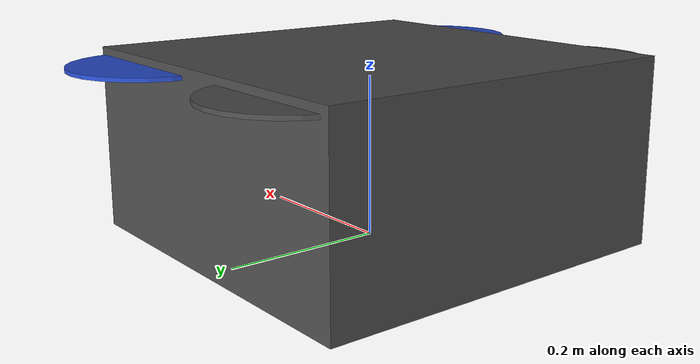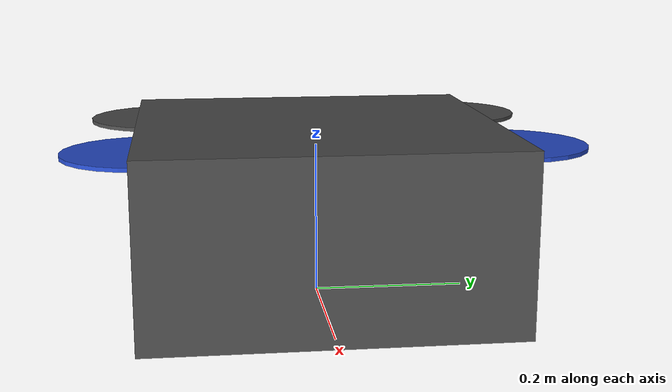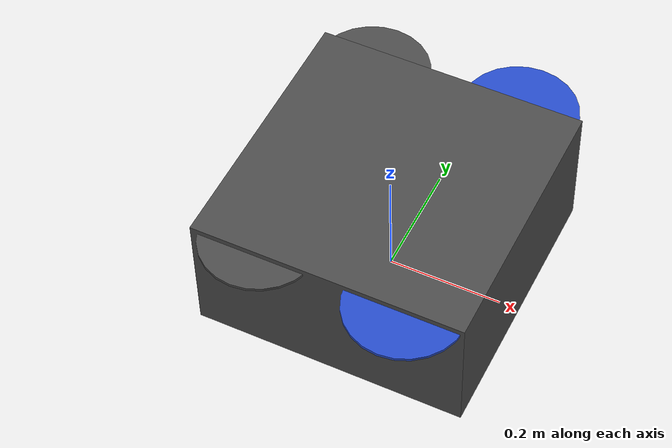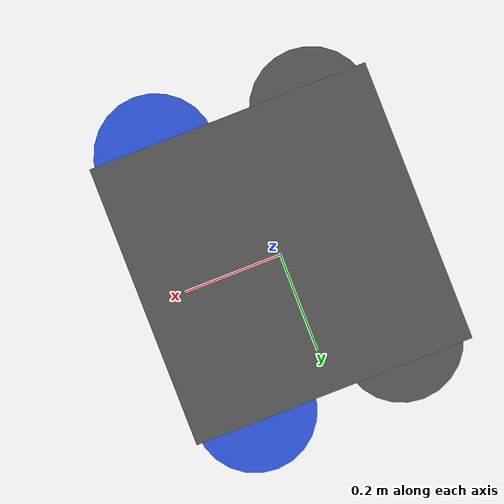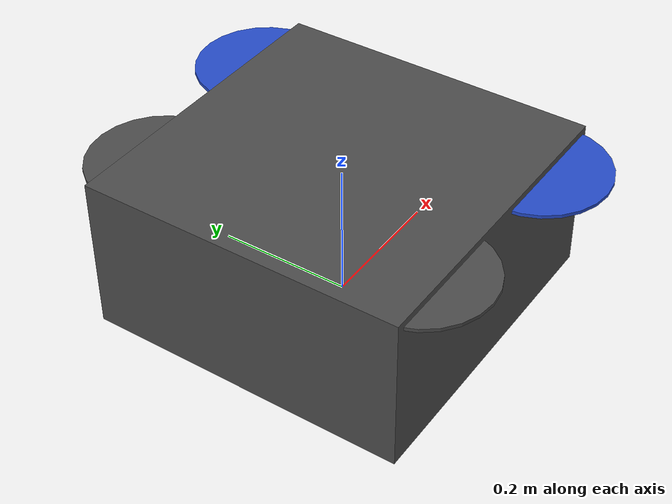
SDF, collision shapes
<?xml version='1.0'?>
<sdf version='1.6'>
  <model name='iris_with_kinect'>
    <pose>0 0 0 0 0 0</pose>

      <include>
        <uri>model://iris_with_standoffs_demo</uri>
        <pose>0 0 0 0 0 0</pose>
      </include>

      <include>
        <uri>model://kinect_depth</uri>
        <pose>0.03 0 0.13 0 0.6 0</pose>
      </include>

      <joint name="cam_mount" type="fixed">
	<parent>iris_demo::iris::base_link</parent>
	<child>kinect::cam_link</child>
	<axis>
	  <limit>
	    <lower>0</lower>
 	    <upper>0</upper>
	  </limit>
	  <xyz>0 0 1</xyz>
	  <use_parent_model_frame>true</use_parent_model_frame>
	</axis>
      </joint>

      <!-- For Another Lidar Payload -->
    </model>
  </sdf>

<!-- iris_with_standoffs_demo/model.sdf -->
<sdf version="1.6">
  <model name="iris_demo">
    <include>
      <uri>model://iris_with_standoffs</uri>
    </include>

    <!-- plugins -->
    <plugin name="rotor_0_blade_1" filename="libLiftDragPlugin.so">
      <a0>0.1</a0>
      <alpha_stall>1.4</alpha_stall>
      <cla>0.2500</cla>
      <cda>0.10</cda>
      <cma>0.00</cma>
      <cla_stall>-0.025</cla_stall>
      <cda_stall>0.0</cda_stall>
      <cma_stall>0.0</cma_stall>
      <area>0.2</area>
      <air_density>1.2041</air_density>
      <cp>0.084 0 0</cp>
      <forward>0 1 0</forward>
      <upward>0 0 1</upward>
      <link_name>iris::rotor_0</link_name>
    </plugin>
    <plugin name="rotor_0_blade_2" filename="libLiftDragPlugin.so">
      <a0>0.1</a0>
      <alpha_stall>1.4</alpha_stall>
      <cla>0.2500</cla>
      <cda>0.10</cda>
      <cma>0.00</cma>
      <cla_stall>-0.025</cla_stall>
      <cda_stall>0.0</cda_stall>
      <cma_stall>0.0</cma_stall>
      <area>0.2</area>
      <air_density>1.2041</air_density>
      <cp>-0.084 0 0</cp>
      <forward>0 -1 0</forward>
      <upward>0 0 1</upward>
      <link_name>iris::rotor_0</link_name>
    </plugin>

    <plugin name="rotor_1_blade_1" filename="libLiftDragPlugin.so">
      <a0>0.1</a0>
      <alpha_stall>1.4</alpha_stall>
      <cla>0.2500</cla>
      <cda>0.10</cda>
      <cma>0.00</cma>
      <cla_stall>-0.025</cla_stall>
      <cda_stall>0.0</cda_stall>
      <cma_stall>0.0</cma_stall>
      <area>0.2</area>
      <air_density>1.2041</air_density>
      <cp>0.084 0 0</cp>
      <forward>0 1 0</forward>
      <upward>0 0 1</upward>
      <link_name>iris::rotor_1</link_name>
    </plugin>
    <plugin name="rotor_1_blade_2" filename="libLiftDragPlugin.so">
      <a0>0.1</a0>
      <alpha_stall>1.4</alpha_stall>
      <cla>0.2500</cla>
      <cda>0.10</cda>
      <cma>0.00</cma>
      <cla_stall>-0.025</cla_stall>
      <cda_stall>0.0</cda_stall>
      <cma_stall>0.0</cma_stall>
      <area>0.2</area>
      <air_density>1.2041</air_density>
      <cp>-0.084 0 0</cp>
      <forward>0 -1 0</forward>
      <upward>0 0 1</upward>
      <link_name>iris::rotor_1</link_name>
    </plugin>

    <plugin name="rotor_2_blade_1" filename="libLiftDragPlugin.so">
      <a0>0.1</a0>
      <alpha_stall>1.4</alpha_stall>
      <cla>0.2500</cla>
      <cda>0.10</cda>
      <cma>0.00</cma>
      <cla_stall>-0.025</cla_stall>
      <cda_stall>0.0</cda_stall>
      <cma_stall>0.0</cma_stall>
      <area>0.2</area>
      <air_density>1.2041</air_density>
      <cp>0.084 0 0</cp>
      <forward>0 -1 0</forward>
      <upward>0 0 1</upward>
      <link_name>iris::rotor_2</link_name>
    </plugin>
    <plugin name="rotor_2_blade_2" filename="libLiftDragPlugin.so">
      <a0>0.1</a0>
      <alpha_stall>1.4</alpha_stall>
      <cla>0.2500</cla>
      <cda>0.10</cda>
      <cma>0.00</cma>
      <cla_stall>-0.025</cla_stall>
      <cda_stall>0.0</cda_stall>
      <cma_stall>0.0</cma_stall>
      <area>0.2</area>
      <air_density>1.2041</air_density>
      <cp>-0.084 0 0</cp>
      <forward>0 1 0</forward>
      <upward>0 0 1</upward>
      <link_name>iris::rotor_2</link_name>
    </plugin>

    <plugin name="rotor_3_blade_1" filename="libLiftDragPlugin.so">
      <a0>0.1</a0>
      <alpha_stall>1.4</alpha_stall>
      <cla>0.2500</cla>
      <cda>0.10</cda>
      <cma>0.00</cma>
      <cla_stall>-0.025</cla_stall>
      <cda_stall>0.0</cda_stall>
      <cma_stall>0.0</cma_stall>
      <area>0.2</area>
      <air_density>1.2041</air_density>
      <cp>0.084 0 0</cp>
      <forward>0 -1 0</forward>
      <upward>0 0 1</upward>
      <link_name>iris::rotor_3</link_name>
    </plugin>
    <plugin name="rotor_3_blade_2" filename="libLiftDragPlugin.so">
      <a0>0.1</a0>
      <alpha_stall>1.4</alpha_stall>
      <cla>0.2500</cla>
      <cda>0.10</cda>
      <cma>0.00</cma>
      <cla_stall>-0.025</cla_stall>
      <cda_stall>0.0</cda_stall>
      <cma_stall>0.0</cma_stall>
      <area>0.2</area>
      <air_density>1.2041</air_density>
      <cp>-0.084 0 0</cp>
      <forward>0 1 0</forward>
      <upward>0 0 1</upward>
      <link_name>iris::rotor_3</link_name>
    </plugin>
    <plugin name="arducopter_plugin" filename="libArduCopterPlugin.so">
      <imuName>iris_demo::iris::iris/imu_link::imu_sensor</imuName>
      <connectionTimeoutMaxCount>5</connectionTimeoutMaxCount>
      <rotor id="0">
        <vel_p_gain>0.01</vel_p_gain>
        <vel_i_gain>0</vel_i_gain>
        <vel_d_gain>0</vel_d_gain>
        <vel_i_max>0</vel_i_max>
        <vel_i_min>0</vel_i_min>
        <vel_cmd_max>2.0</vel_cmd_max>
        <vel_cmd_min>-2.0</vel_cmd_min>
        <jointName>iris::rotor_0_joint</jointName>
        <turningDirection>ccw</turningDirection>
        <rotorVelocitySlowdownSim>1</rotorVelocitySlowdownSim>
      </rotor>
      <rotor id="1">
        <vel_p_gain>0.01</vel_p_gain>
        <vel_i_gain>0</vel_i_gain>
        <vel_d_gain>0</vel_d_gain>
        <vel_i_max>0</vel_i_max>
        <vel_i_min>0</vel_i_min>
        <vel_cmd_max>2.0</vel_cmd_max>
        <vel_cmd_min>-2.0</vel_cmd_min>
        <jointName>iris::rotor_1_joint</jointName>
        <turningDirection>ccw</turningDirection>
        <rotorVelocitySlowdownSim>1</rotorVelocitySlowdownSim>
      </rotor>
      <rotor id="2">
        <vel_p_gain>0.01</vel_p_gain>
        <vel_i_gain>0</vel_i_gain>
        <vel_d_gain>0</vel_d_gain>
        <vel_i_max>0</vel_i_max>
        <vel_i_min>0</vel_i_min>
        <vel_cmd_max>2.0</vel_cmd_max>
        <vel_cmd_min>-2.0</vel_cmd_min>
        <jointName>iris::rotor_2_joint</jointName>
        <turningDirection>cw</turningDirection>
        <rotorVelocitySlowdownSim>1</rotorVelocitySlowdownSim>
      </rotor>
      <rotor id="3">
        <vel_p_gain>0.01</vel_p_gain>
        <vel_i_gain>0</vel_i_gain>
        <vel_d_gain>0</vel_d_gain>
        <vel_i_max>0</vel_i_max>
        <vel_i_min>0</vel_i_min>
        <vel_cmd_max>2.0</vel_cmd_max>
        <vel_cmd_min>-2.0</vel_cmd_min>
        <jointName>iris::rotor_3_joint</jointName>
        <turningDirection>cw</turningDirection>
        <rotorVelocitySlowdownSim>1</rotorVelocitySlowdownSim>
      </rotor>
    </plugin>

  </model>
</sdf>

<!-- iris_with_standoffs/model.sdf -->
<sdf version='1.6'>
  <model name='iris'>
    <pose>0 0 0.194923 0 0 0</pose>
    <link name='base_link'>
      <velocity_decay>
        <linear>0.0</linear>
        <angular>0.0</angular>
      </velocity_decay>
      <inertial>
        <pose>0 0 0 0 0 0</pose>
        <mass>1.5</mass>
        <inertia>
          <ixx>0.008</ixx>
          <ixy>0</ixy>
          <ixz>0</ixz>
          <iyy>0.015</iyy>
          <iyz>0</iyz>
          <izz>0.017</izz>
        </inertia>
      </inertial>
      <collision name='base_link_collision'>
        <pose>0 0 -0.08 0 0 0</pose>
        <geometry>
          <box>
            <size>0.47 0.47 0.23</size>
          </box>
        </geometry>
        <surface>
          <contact>
            <ode>
              <max_vel>100.0</max_vel>
              <min_depth>0.001</min_depth>
            </ode>
          </contact>
          <friction>
            <ode>
              <mu>1.0</mu>
              <mu2>1.0</mu2>
            </ode>
          </friction>
        </surface>
      </collision>
      <visual name='base_link_visual'>
        <geometry>
          <mesh>
            <uri>model://iris_with_standoffs/meshes/iris.dae</uri>
          </mesh>
        </geometry>
        <material>
          <script>
            <name>Gazebo/DarkGrey</name>
          </script>
        </material>
      </visual>

      <visual name='front_left_leg_visual'>
        <pose>0.123 0.22 -0.11 0 0 0</pose>
        <geometry>
          <cylinder>
            <radius>0.005</radius>
            <length>0.17</length>
          </cylinder>
        </geometry>
        <material>
          <script>
            <name>Gazebo/FlatBlack</name>
            <uri>file://media/materials/scripts/gazebo.material</uri>
          </script>
        </material>
      </visual>
      <visual name='front_right_leg_visual'>
        <pose>0.123 -0.22 -0.11 0 0 0</pose>
        <geometry>
          <cylinder>
            <radius>0.005</radius>
            <length>0.17</length>
          </cylinder>
        </geometry>
        <material>
          <script>
            <name>Gazebo/FlatBlack</name>
            <uri>file://media/materials/scripts/gazebo.material</uri>
          </script>
        </material>
      </visual>
      <visual name='rear_left_leg_visual'>
        <pose>-0.140 0.21 -0.11 0 0 0</pose>
        <geometry>
          <cylinder>
            <radius>0.005</radius>
            <length>0.17</length>
          </cylinder>
        </geometry>
        <material>
          <script>
            <name>Gazebo/FlatBlack</name>
            <uri>file://media/materials/scripts/gazebo.material</uri>
          </script>
        </material>
      </visual>
      <visual name='rear_right_leg_visual'>
        <pose>-0.140 -0.21 -0.11 0 0 0</pose>
        <geometry>
          <cylinder>
            <radius>0.005</radius>
            <length>0.17</length>
          </cylinder>
        </geometry>
        <material>
          <script>
            <name>Gazebo/FlatBlack</name>
            <uri>file://media/materials/scripts/gazebo.material</uri>
          </script>
        </material>
      </visual>
    </link>
    <link name='iris/ground_truth/odometry_sensorgt_link'>
      <pose>0 0 0 0 -0 0</pose>
      <inertial>
        <pose>0 0 0 0 -0 0</pose>
        <mass>0.15</mass>
        <inertia>
          <ixx>0.0001</ixx>
          <ixy>0</ixy>
          <ixz>0</ixz>
          <iyy>0.0002</iyy>
          <iyz>0</iyz>
          <izz>0.0002</izz>
        </inertia>
      </inertial>
    </link>
    <joint name='iris/ground_truth/odometry_sensorgt_joint' type='revolute'>
      <child>iris/ground_truth/odometry_sensorgt_link</child>
      <parent>base_link</parent>
      <axis>
        <xyz>0 0 1</xyz>
        <limit>
          <lower>0</lower>
          <upper>0</upper>
          <effort>0</effort>
          <velocity>0</velocity>
        </limit>
        <dynamics>
          <damping>1.0</damping>
        </dynamics>
        <use_parent_model_frame>1</use_parent_model_frame>
      </axis>
      <physics>
        <ode>
          <implicit_spring_damper>1</implicit_spring_damper>
        </ode>
      </physics>
    </joint>
    <link name='iris/imu_link'>
      <inertial>
        <pose>0 0 0 0 0 0</pose>
        <mass>0.15</mass>
        <inertia>
          <ixx>0.00001</ixx>
          <ixy>0</ixy>
          <ixz>0</ixz>
          <iyy>0.00002</iyy>
          <iyz>0</iyz>
          <izz>0.00002</izz>
        </inertia>
      </inertial>
      <sensor name="imu_sensor" type="imu">
        <pose>0 0 0 3.141593 0 0</pose>
        <always_on>1</always_on>
        <update_rate>1000.0</update_rate>
      </sensor>
    </link>
    <joint name='iris/imu_joint' type='revolute'>
      <child>iris/imu_link</child>
      <parent>base_link</parent>
      <axis>
        <xyz>0 0 1</xyz>
        <limit>
          <lower>0</lower>
          <upper>0</upper>
          <effort>0</effort>
          <velocity>0</velocity>
        </limit>
        <dynamics>
          <damping>1.0</damping>
        </dynamics>
        <use_parent_model_frame>1</use_parent_model_frame>
      </axis>
      <physics>
        <ode>
          <implicit_spring_damper>1</implicit_spring_damper>
        </ode>
      </physics>
    </joint>
    <link name='rotor_0'>
      <pose>0.13 -0.22 0.023 0 -0 0</pose>
      <inertial>
        <pose>0 0 0 0 -0 0</pose>
        <mass>0.025</mass>
        <inertia>
          <ixx>9.75e-06</ixx>
          <ixy>0</ixy>
          <ixz>0</ixz>
          <iyy>0.000166704</iyy>
          <iyz>0</iyz>
          <izz>0.000166704</izz>
        </inertia>
      </inertial>
      <collision name='rotor_0_collision'>
        <pose>0 0 0 0 -0 0</pose>
        <geometry>
          <cylinder>
            <length>0.005</length>
            <radius>0.1</radius>
          </cylinder>
        </geometry>
        <surface>
          <contact>
            <ode/>
          </contact>
          <friction>
            <ode/>
          </friction>
        </surface>
      </collision>
      <visual name='rotor_0_visual'>
        <pose>0 0 0 0 -0 0</pose>
        <geometry>
          <mesh>
            <scale>1 1 1</scale>
            <uri>model://iris_with_standoffs/meshes/iris_prop_ccw.dae</uri>
          </mesh>
        </geometry>
        <material>
          <script>
            <name>Gazebo/Blue</name>
            <uri>__default__</uri>
          </script>
        </material>
      </visual>
      <gravity>1</gravity>
      <velocity_decay/>
      <self_collide>0</self_collide>
    </link>
    <joint name='rotor_0_joint' type='revolute'>
      <child>rotor_0</child>
      <parent>base_link</parent>
      <axis>
        <xyz>0 0 1</xyz>
        <limit>
          <lower>-1e+16</lower>
          <upper>1e+16</upper>
        </limit>
        <dynamics>
          <damping>0.004</damping>
        </dynamics>
        <use_parent_model_frame>1</use_parent_model_frame>
      </axis>
      <physics>
        <ode>
          <implicit_spring_damper>1</implicit_spring_damper>
        </ode>
      </physics>
    </joint>
    <link name='rotor_1'>
      <pose>-0.13 0.2 0.023 0 -0 0</pose>
      <inertial>
        <pose>0 0 0 0 -0 0</pose>
        <mass>0.025</mass>
        <inertia>
          <ixx>9.75e-06</ixx>
          <ixy>0</ixy>
          <ixz>0</ixz>
          <iyy>0.000166704</iyy>
          <iyz>0</iyz>
          <izz>0.000166704</izz>
        </inertia>
      </inertial>
      <collision name='rotor_1_collision'>
        <pose>0 0 0 0 -0 0</pose>
        <geometry>
          <cylinder>
            <length>0.005</length>
            <radius>0.1</radius>
          </cylinder>
        </geometry>
        <surface>
          <contact>
            <ode/>
          </contact>
          <friction>
            <ode/>
          </friction>
        </surface>
      </collision>
      <visual name='rotor_1_visual'>
        <pose>0 0 0 0 -0 0</pose>
        <geometry>
          <mesh>
            <scale>1 1 1</scale>
            <uri>model://iris_with_standoffs/meshes/iris_prop_ccw.dae</uri>
          </mesh>
        </geometry>
        <material>
          <script>
            <name>Gazebo/DarkGrey</name>
            <uri>__default__</uri>
          </script>
        </material>
      </visual>
      <gravity>1</gravity>
      <velocity_decay/>
      <self_collide>0</self_collide>
    </link>
    <joint name='rotor_1_joint' type='revolute'>
      <child>rotor_1</child>
      <parent>base_link</parent>
      <axis>
        <xyz>0 0 1</xyz>
        <limit>
          <lower>-1e+16</lower>
          <upper>1e+16</upper>
        </limit>
        <dynamics>
          <damping>0.004</damping>
        </dynamics>
        <use_parent_model_frame>1</use_parent_model_frame>
      </axis>
      <physics>
        <ode>
          <implicit_spring_damper>1</implicit_spring_damper>
        </ode>
      </physics>
    </joint>
    <link name='rotor_2'>
      <pose>0.13 0.22 0.023 0 -0 0</pose>
      <inertial>
        <pose>0 0 0 0 -0 0</pose>
        <mass>0.025</mass>
        <inertia>
          <ixx>9.75e-06</ixx>
          <ixy>0</ixy>
          <ixz>0</ixz>
          <iyy>0.000166704</iyy>
          <iyz>0</iyz>
          <izz>0.000166704</izz>
        </inertia>
      </inertial>
      <collision name='rotor_2_collision'>
        <pose>0 0 0 0 -0 0</pose>
        <geometry>
          <cylinder>
            <length>0.005</length>
            <radius>0.1</radius>
          </cylinder>
        </geometry>
        <surface>
          <contact>
            <ode/>
          </contact>
          <friction>
            <ode/>
          </friction>
        </surface>
      </collision>
      <visual name='rotor_2_visual'>
        <pose>0 0 0 0 -0 0</pose>
        <geometry>
          <mesh>
            <scale>1 1 1</scale>
            <uri>model://iris_with_standoffs/meshes/iris_prop_cw.dae</uri>
          </mesh>
        </geometry>
        <material>
          <script>
            <name>Gazebo/Blue</name>
            <uri>__default__</uri>
          </script>
        </material>
      </visual>
      <gravity>1</gravity>
      <velocity_decay/>
      <self_collide>0</self_collide>
    </link>
    <joint name='rotor_2_joint' type='revolute'>
      <child>rotor_2</child>
      <parent>base_link</parent>
      <axis>
        <xyz>0 0 1</xyz>
        <limit>
          <lower>-1e+16</lower>
          <upper>1e+16</upper>
        </limit>
        <dynamics>
          <damping>0.004</damping>
        </dynamics>
        <use_parent_model_frame>1</use_parent_model_frame>
      </axis>
      <physics>
        <ode>
          <implicit_spring_damper>1</implicit_spring_damper>
        </ode>
      </physics>
    </joint>
    <link name='rotor_3'>
      <pose>-0.13 -0.2 0.023 0 -0 0</pose>
      <inertial>
        <pose>0 0 0 0 -0 0</pose>
        <mass>0.025</mass>
        <inertia>
          <ixx>9.75e-06</ixx>
          <ixy>0</ixy>
          <ixz>0</ixz>
          <iyy>0.000166704</iyy>
          <iyz>0</iyz>
          <izz>0.000166704</izz>
        </inertia>
      </inertial>
      <collision name='rotor_3_collision'>
        <pose>0 0 0 0 -0 0</pose>
        <geometry>
          <cylinder>
            <length>0.005</length>
            <radius>0.1</radius>
          </cylinder>
        </geometry>
        <surface>
          <contact>
            <ode/>
          </contact>
          <friction>
            <ode/>
          </friction>
        </surface>
      </collision>
      <visual name='rotor_3_visual'>
        <pose>0 0 0 0 -0 0</pose>
        <geometry>
          <mesh>
            <scale>1 1 1</scale>
            <uri>model://iris_with_standoffs/meshes/iris_prop_cw.dae</uri>
          </mesh>
        </geometry>
        <material>
          <script>
            <name>Gazebo/DarkGrey</name>
            <uri>__default__</uri>
          </script>
        </material>
      </visual>
      <gravity>1</gravity>
      <velocity_decay/>
      <self_collide>0</self_collide>
    </link>
    <joint name='rotor_3_joint' type='revolute'>
      <child>rotor_3</child>
      <parent>base_link</parent>
      <axis>
        <xyz>0 0 1</xyz>
        <limit>
          <lower>-1e+16</lower>
          <upper>1e+16</upper>
        </limit>
        <dynamics>
          <damping>0.004</damping>
        </dynamics>
        <use_parent_model_frame>1</use_parent_model_frame>
      </axis>
      <physics>
        <ode>
          <implicit_spring_damper>1</implicit_spring_damper>
        </ode>
      </physics>
    </joint>
    <static>0</static>
  </model>
</sdf>

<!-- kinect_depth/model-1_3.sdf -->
<sdf version="1.3">
  <model name="kinect">
    <pose>0 0 0.036 0 0 0</pose>
    <link name="cam_link">

      <collision name="collision">
        <geometry>
          <box>
            <size>0.073000 0.276000 0.072000</size>
          </box>
        </geometry>
      </collision>
      <visual name="visual">
        <geometry>
          <mesh>
            <uri>model://kinect/meshes/kinect.dae</uri>
          </mesh>
        </geometry>
      </visual>
      <sensor name="camera" type="depth">
            <update_rate>20</update_rate>
            <camera>
                <horizontal_fov>1.047198</horizontal_fov>
                <image>
                    <width>640</width>
                    <height>480</height>
                    <format>R8G8B8</format>
                </image>
                <clip>
                    <near>0.05</near>
                    <far>3</far>
                </clip>
            </camera>
            <plugin name="camera_plugin" filename="libgazebo_ros_openni_kinect.so">
                <baseline>0.2</baseline>
                <alwaysOn>true</alwaysOn>
                <updateRate>0.0</updateRate>
                <cameraName>camera_ir</cameraName>
                <imageTopicName>/camera/rgb/image_rect_color</imageTopicName>
                <cameraInfoTopicName>/camera/rgb/camera_info</cameraInfoTopicName>
                <depthImageTopicName>/camera/depth_registered/sw_registered/image_rect_raw</depthImageTopicName>
                <depthImageInfoTopicName>/camera/depth/camera_info</depthImageInfoTopicName>
                <pointCloudTopicName>/camera/depth/points</pointCloudTopicName>
                <frameName>camera_link</frameName>
                <pointCloudCutoff>0.05</pointCloudCutoff>
                <distortionK1>0</distortionK1>
                <distortionK2>0</distortionK2>
                <distortionK3>0</distortionK3>
                <distortionT1>0</distortionT1>
                <distortionT2>0</distortionT2>
                <CxPrime>0</CxPrime>
                <Cx>0</Cx>
                <Cy>0</Cy>
                <focalLength>0</focalLength>
                <hackBaseline>0</hackBaseline>
            </plugin>
      </sensor>
    </link>
  </model>
</sdf>
